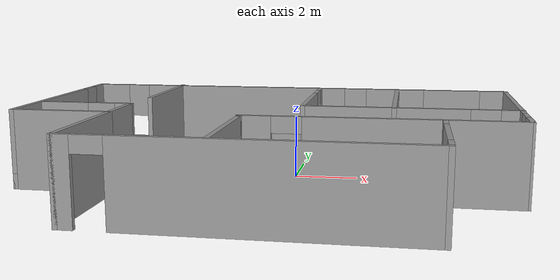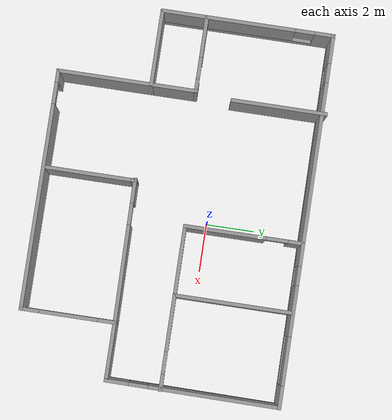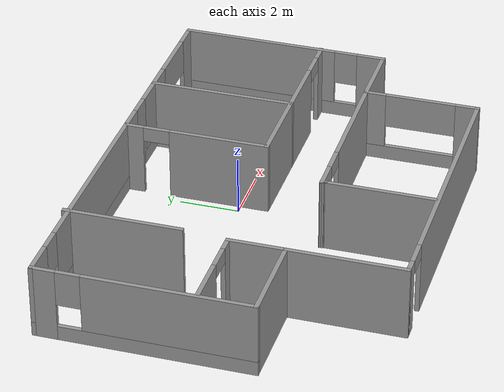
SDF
<?xml version='1.0'?>
<sdf version='1.7'>
  <model name='model'>
    <pose>-0.629865 -1.42333 0 0 -0 0</pose>
    <link name='Wall_0'>
      <pose>-0.000263 5.40063 0 0 -0 3.14159</pose>
      <visual name='Wall_0_Visual_0'>
        <pose>-7.26449 0 1.25 0 -0 0</pose>
        <geometry>
          <box>
            <size>0.971021 0.15 2.5</size>
          </box>
        </geometry>
        <material>
          <script>
            <uri>file://media/materials/scripts/gazebo.material</uri>
            <name>Gazebo/Grey</name>
          </script>
          <ambient>1 1 1 1</ambient>
        </material>
        <meta>
          <layer>0</layer>
        </meta>
      </visual>
      <collision name='Wall_0_Collision_0'>
        <geometry>
          <box>
            <size>0.971021 0.15 2.5</size>
          </box>
        </geometry>
        <pose>-7.26449 0 1.25 0 -0 0</pose>
      </collision>
      <visual name='Wall_0_Visual_1'>
        <pose>0.485511 0 0.25 0 -0 0</pose>
        <geometry>
          <box>
            <size>14.529 0.15 0.5</size>
          </box>
        </geometry>
        <material>
          <script>
            <uri>file://media/materials/scripts/gazebo.material</uri>
            <name>Gazebo/Grey</name>
          </script>
          <ambient>1 1 1 1</ambient>
        </material>
        <meta>
          <layer>0</layer>
        </meta>
      </visual>
      <collision name='Wall_0_Collision_1'>
        <geometry>
          <box>
            <size>14.529 0.15 0.5</size>
          </box>
        </geometry>
        <pose>0.485511 0 0.25 0 -0 0</pose>
      </collision>
      <visual name='Wall_0_Visual_2'>
        <pose>-3.73328 0 1.5 0 -0 0</pose>
        <geometry>
          <box>
            <size>2.0914 0.15 2</size>
          </box>
        </geometry>
        <material>
          <script>
            <uri>file://media/materials/scripts/gazebo.material</uri>
            <name>Gazebo/Grey</name>
          </script>
          <ambient>1 1 1 1</ambient>
        </material>
        <meta>
          <layer>0</layer>
        </meta>
      </visual>
      <collision name='Wall_0_Collision_2'>
        <geometry>
          <box>
            <size>2.0914 0.15 2</size>
          </box>
        </geometry>
        <pose>-3.73328 0 1.5 0 -0 0</pose>
      </collision>
      <visual name='Wall_0_Visual_3'>
        <pose>1.91797 0 1.5 0 -0 0</pose>
        <geometry>
          <box>
            <size>7.6111 0.15 2</size>
          </box>
        </geometry>
        <material>
          <script>
            <uri>file://media/materials/scripts/gazebo.material</uri>
            <name>Gazebo/Grey</name>
          </script>
          <ambient>1 1 1 1</ambient>
        </material>
        <meta>
          <layer>0</layer>
        </meta>
      </visual>
      <collision name='Wall_0_Collision_3'>
        <geometry>
          <box>
            <size>7.6111 0.15 2</size>
          </box>
        </geometry>
        <pose>1.91797 0 1.5 0 -0 0</pose>
      </collision>
      <visual name='Wall_0_Visual_4'>
        <pose>7.13676 0 1.5 0 -0 0</pose>
        <geometry>
          <box>
            <size>1.22648 0.15 2</size>
          </box>
        </geometry>
        <material>
          <script>
            <uri>file://media/materials/scripts/gazebo.material</uri>
            <name>Gazebo/Grey</name>
          </script>
          <ambient>1 1 1 1</ambient>
        </material>
        <meta>
          <layer>0</layer>
        </meta>
      </visual>
      <collision name='Wall_0_Collision_4'>
        <geometry>
          <box>
            <size>1.22648 0.15 2</size>
          </box>
        </geometry>
        <pose>7.13676 0 1.5 0 -0 0</pose>
      </collision>
      <visual name='Wall_0_Visual_5'>
        <pose>-5.77898 0 1.9 0 -0 0</pose>
        <geometry>
          <box>
            <size>2 0.15 1.2</size>
          </box>
        </geometry>
        <material>
          <script>
            <uri>file://media/materials/scripts/gazebo.material</uri>
            <name>Gazebo/Grey</name>
          </script>
          <ambient>1 1 1 1</ambient>
        </material>
        <meta>
          <layer>0</layer>
        </meta>
      </visual>
      <collision name='Wall_0_Collision_5'>
        <geometry>
          <box>
            <size>2 0.15 1.2</size>
          </box>
        </geometry>
        <pose>-5.77898 0 1.9 0 -0 0</pose>
      </collision>
      <visual name='Wall_0_Visual_6'>
        <pose>-2.28758 0 1.9 0 -0 0</pose>
        <geometry>
          <box>
            <size>0.8 0.15 1.2</size>
          </box>
        </geometry>
        <material>
          <script>
            <uri>file://media/materials/scripts/gazebo.material</uri>
            <name>Gazebo/Grey</name>
          </script>
          <ambient>1 1 1 1</ambient>
        </material>
        <meta>
          <layer>0</layer>
        </meta>
      </visual>
      <collision name='Wall_0_Collision_6'>
        <geometry>
          <box>
            <size>0.8 0.15 1.2</size>
          </box>
        </geometry>
        <pose>-2.28758 0 1.9 0 -0 0</pose>
      </collision>
      <visual name='Wall_0_Visual_7'>
        <pose>6.12352 0 1.9 0 -0 0</pose>
        <geometry>
          <box>
            <size>0.8 0.15 1.2</size>
          </box>
        </geometry>
        <material>
          <script>
            <uri>file://media/materials/scripts/gazebo.material</uri>
            <name>Gazebo/Grey</name>
          </script>
          <ambient>1 1 1 1</ambient>
        </material>
        <meta>
          <layer>0</layer>
        </meta>
      </visual>
      <collision name='Wall_0_Collision_7'>
        <geometry>
          <box>
            <size>0.8 0.15 1.2</size>
          </box>
        </geometry>
        <pose>6.12352 0 1.9 0 -0 0</pose>
      </collision>
    </link>
    <link name='Wall_12'>
      <pose>5.27474 -3.62437 0 0 -0 1.5708</pose>
      <visual name='Wall_12_Visual_0'>
        <pose>-1.58898 0 1.25 0 -0 0</pose>
        <geometry>
          <box>
            <size>0.822046 0.15 2.5</size>
          </box>
        </geometry>
        <material>
          <script>
            <uri>file://media/materials/scripts/gazebo.material</uri>
            <name>Gazebo/Grey</name>
          </script>
          <ambient>1 1 1 1</ambient>
        </material>
        <meta>
          <layer>0</layer>
        </meta>
      </visual>
      <collision name='Wall_12_Collision_0'>
        <geometry>
          <box>
            <size>0.822046 0.15 2.5</size>
          </box>
        </geometry>
        <pose>-1.58898 0 1.25 0 -0 0</pose>
      </collision>
      <visual name='Wall_12_Visual_1'>
        <pose>0.411023 0 0.25 0 -0 0</pose>
        <geometry>
          <box>
            <size>3.17795 0.15 0.5</size>
          </box>
        </geometry>
        <material>
          <script>
            <uri>file://media/materials/scripts/gazebo.material</uri>
            <name>Gazebo/Grey</name>
          </script>
          <ambient>1 1 1 1</ambient>
        </material>
        <meta>
          <layer>0</layer>
        </meta>
      </visual>
      <collision name='Wall_12_Collision_1'>
        <geometry>
          <box>
            <size>3.17795 0.15 0.5</size>
          </box>
        </geometry>
        <pose>0.411023 0 0.25 0 -0 0</pose>
      </collision>
      <visual name='Wall_12_Visual_2'>
        <pose>1.61102 0 1.5 0 -0 0</pose>
        <geometry>
          <box>
            <size>0.777954 0.15 2</size>
          </box>
        </geometry>
        <material>
          <script>
            <uri>file://media/materials/scripts/gazebo.material</uri>
            <name>Gazebo/Grey</name>
          </script>
          <ambient>1 1 1 1</ambient>
        </material>
        <meta>
          <layer>0</layer>
        </meta>
      </visual>
      <collision name='Wall_12_Collision_2'>
        <geometry>
          <box>
            <size>0.777954 0.15 2</size>
          </box>
        </geometry>
        <pose>1.61102 0 1.5 0 -0 0</pose>
      </collision>
      <visual name='Wall_12_Visual_3'>
        <pose>0.022046 0 1.9 0 -0 0</pose>
        <geometry>
          <box>
            <size>2.4 0.15 1.2</size>
          </box>
        </geometry>
        <material>
          <script>
            <uri>file://media/materials/scripts/gazebo.material</uri>
            <name>Gazebo/Grey</name>
          </script>
          <ambient>1 1 1 1</ambient>
        </material>
        <meta>
          <layer>0</layer>
        </meta>
      </visual>
      <collision name='Wall_12_Collision_3'>
        <geometry>
          <box>
            <size>2.4 0.15 1.2</size>
          </box>
        </geometry>
        <pose>0.022046 0 1.9 0 -0 0</pose>
      </collision>
    </link>
    <link name='Wall_13'>
      <collision name='Wall_13_Collision'>
        <geometry>
          <box>
            <size>2.5 0.15 2.5</size>
          </box>
        </geometry>
        <pose>0 0 1.25 0 -0 0</pose>
      </collision>
      <visual name='Wall_13_Visual'>
        <pose>0 0 1.25 0 -0 0</pose>
        <geometry>
          <box>
            <size>2.5 0.15 2.5</size>
          </box>
        </geometry>
        <material>
          <script>
            <uri>file://media/materials/scripts/gazebo.material</uri>
            <name>Gazebo/Grey</name>
          </script>
          <ambient>1 1 1 1</ambient>
        </material>
        <meta>
          <layer>0</layer>
        </meta>
      </visual>
      <pose>6.44974 -1.69937 0 0 -0 0</pose>
    </link>
    <link name='Wall_14'>
      <pose>7.64974 1.85063 0 0 -0 1.56375</pose>
      <visual name='Wall_14_Visual_0'>
        <pose>-3.12543 0 1.25 0 -0 0</pose>
        <geometry>
          <box>
            <size>0.999325 0.15 2.5</size>
          </box>
        </geometry>
        <material>
          <script>
            <uri>file://media/materials/scripts/gazebo.material</uri>
            <name>Gazebo/Grey</name>
          </script>
          <ambient>1 1 1 1</ambient>
        </material>
        <meta>
          <layer>0</layer>
        </meta>
      </visual>
      <collision name='Wall_14_Collision_0'>
        <geometry>
          <box>
            <size>0.999325 0.15 2.5</size>
          </box>
        </geometry>
        <pose>-3.12543 0 1.25 0 -0 0</pose>
      </collision>
      <visual name='Wall_14_Visual_1'>
        <pose>0.499662 0 0.25 0 -0 0</pose>
        <geometry>
          <box>
            <size>6.25085 0.15 0.5</size>
          </box>
        </geometry>
        <material>
          <script>
            <uri>file://media/materials/scripts/gazebo.material</uri>
            <name>Gazebo/Grey</name>
          </script>
          <ambient>1 1 1 1</ambient>
        </material>
        <meta>
          <layer>0</layer>
        </meta>
      </visual>
      <collision name='Wall_14_Collision_1'>
        <geometry>
          <box>
            <size>6.25085 0.15 0.5</size>
          </box>
        </geometry>
        <pose>0.499662 0 0.25 0 -0 0</pose>
      </collision>
      <visual name='Wall_14_Visual_2'>
        <pose>0.899662 0 1.5 0 -0 0</pose>
        <geometry>
          <box>
            <size>5.45085 0.15 2</size>
          </box>
        </geometry>
        <material>
          <script>
            <uri>file://media/materials/scripts/gazebo.material</uri>
            <name>Gazebo/Grey</name>
          </script>
          <ambient>1 1 1 1</ambient>
        </material>
        <meta>
          <layer>0</layer>
        </meta>
      </visual>
      <collision name='Wall_14_Collision_2'>
        <geometry>
          <box>
            <size>5.45085 0.15 2</size>
          </box>
        </geometry>
        <pose>0.899662 0 1.5 0 -0 0</pose>
      </collision>
      <visual name='Wall_14_Visual_3'>
        <pose>-2.22576 0 1.9 0 -0 0</pose>
        <geometry>
          <box>
            <size>0.8 0.15 1.2</size>
          </box>
        </geometry>
        <material>
          <script>
            <uri>file://media/materials/scripts/gazebo.material</uri>
            <name>Gazebo/Grey</name>
          </script>
          <ambient>1 1 1 1</ambient>
        </material>
        <meta>
          <layer>0</layer>
        </meta>
      </visual>
      <collision name='Wall_14_Collision_3'>
        <geometry>
          <box>
            <size>0.8 0.15 1.2</size>
          </box>
        </geometry>
        <pose>-2.22576 0 1.9 0 -0 0</pose>
      </collision>
    </link>
    <link name='Wall_16'>
      <pose>0.964816 2.96567 0 0 -0 -1.5708</pose>
      <visual name='Wall_16_Visual_0'>
        <pose>-2.1585 0 1.25 0 -0 0</pose>
        <geometry>
          <box>
            <size>0.683 0.15 2.5</size>
          </box>
        </geometry>
        <material>
          <script>
            <uri>file://media/materials/scripts/gazebo.material</uri>
            <name>Gazebo/Grey</name>
          </script>
          <ambient>1 1 1 1</ambient>
        </material>
        <meta>
          <layer>0</layer>
        </meta>
      </visual>
      <collision name='Wall_16_Collision_0'>
        <geometry>
          <box>
            <size>0.683 0.15 2.5</size>
          </box>
        </geometry>
        <pose>-2.1585 0 1.25 0 -0 0</pose>
      </collision>
      <visual name='Wall_16_Visual_1'>
        <pose>0.7915 0 1.25 0 -0 0</pose>
        <geometry>
          <box>
            <size>3.417 0.15 2.5</size>
          </box>
        </geometry>
        <material>
          <script>
            <uri>file://media/materials/scripts/gazebo.material</uri>
            <name>Gazebo/Grey</name>
          </script>
          <ambient>1 1 1 1</ambient>
        </material>
        <meta>
          <layer>0</layer>
        </meta>
      </visual>
      <collision name='Wall_16_Collision_1'>
        <geometry>
          <box>
            <size>3.417 0.15 2.5</size>
          </box>
        </geometry>
        <pose>0.7915 0 1.25 0 -0 0</pose>
      </collision>
      <visual name='Wall_16_Visual_2'>
        <pose>-1.367 0 2.25 0 -0 0</pose>
        <geometry>
          <box>
            <size>0.9 0.15 0.5</size>
          </box>
        </geometry>
        <material>
          <script>
            <uri>file://media/materials/scripts/gazebo.material</uri>
            <name>Gazebo/Grey</name>
          </script>
          <ambient>1 1 1 1</ambient>
        </material>
        <meta>
          <layer>0</layer>
        </meta>
      </visual>
      <collision name='Wall_16_Collision_2'>
        <geometry>
          <box>
            <size>0.9 0.15 0.5</size>
          </box>
        </geometry>
        <pose>-1.367 0 2.25 0 -0 0</pose>
      </collision>
    </link>
    <link name='Wall_18'>
      <collision name='Wall_18_Collision'>
        <geometry>
          <box>
            <size>3 0.15 2.5</size>
          </box>
        </geometry>
        <pose>0 0 1.25 0 -0 0</pose>
      </collision>
      <visual name='Wall_18_Visual'>
        <pose>0 0 1.25 0 -0 0</pose>
        <geometry>
          <box>
            <size>3 0.15 2.5</size>
          </box>
        </geometry>
        <material>
          <script>
            <uri>file://media/materials/scripts/gazebo.material</uri>
            <name>Gazebo/Grey</name>
          </script>
          <ambient>1 1 1 1</ambient>
        </material>
        <meta>
          <layer>0</layer>
        </meta>
      </visual>
      <pose>2.38982 0.540673 0 0 -0 0</pose>
    </link>
    <link name='Wall_19'>
      <collision name='Wall_19_Collision'>
        <geometry>
          <box>
            <size>5 0.15 2.5</size>
          </box>
        </geometry>
        <pose>0 0 1.25 0 -0 0</pose>
      </collision>
      <visual name='Wall_19_Visual'>
        <pose>0 0 1.25 0 -0 0</pose>
        <geometry>
          <box>
            <size>5 0.15 2.5</size>
          </box>
        </geometry>
        <material>
          <script>
            <uri>file://media/materials/scripts/gazebo.material</uri>
            <name>Gazebo/Grey</name>
          </script>
          <ambient>1 1 1 1</ambient>
        </material>
        <meta>
          <layer>0</layer>
        </meta>
      </visual>
      <pose>3.81482 2.96567 0 0 -0 1.5708</pose>
    </link>
    <link name='Wall_2'>
      <pose>-7.67526 1.85063 0 0 -0 -1.5708</pose>
      <visual name='Wall_2_Visual_0'>
        <pose>-3.20062 0 1.25 0 -0 0</pose>
        <geometry>
          <box>
            <size>0.848754 0.15 2.5</size>
          </box>
        </geometry>
        <material>
          <script>
            <uri>file://media/materials/scripts/gazebo.material</uri>
            <name>Gazebo/Grey</name>
          </script>
          <ambient>1 1 1 1</ambient>
        </material>
        <meta>
          <layer>0</layer>
        </meta>
      </visual>
      <collision name='Wall_2_Collision_0'>
        <geometry>
          <box>
            <size>0.848754 0.15 2.5</size>
          </box>
        </geometry>
        <pose>-3.20062 0 1.25 0 -0 0</pose>
      </collision>
      <visual name='Wall_2_Visual_1'>
        <pose>0.424377 0 0.25 0 -0 0</pose>
        <geometry>
          <box>
            <size>6.40125 0.15 0.5</size>
          </box>
        </geometry>
        <material>
          <script>
            <uri>file://media/materials/scripts/gazebo.material</uri>
            <name>Gazebo/Grey</name>
          </script>
          <ambient>1 1 1 1</ambient>
        </material>
        <meta>
          <layer>0</layer>
        </meta>
      </visual>
      <collision name='Wall_2_Collision_1'>
        <geometry>
          <box>
            <size>6.40125 0.15 0.5</size>
          </box>
        </geometry>
        <pose>0.424377 0 0.25 0 -0 0</pose>
      </collision>
      <visual name='Wall_2_Visual_2'>
        <pose>0.824377 0 1.5 0 -0 0</pose>
        <geometry>
          <box>
            <size>5.60125 0.15 2</size>
          </box>
        </geometry>
        <material>
          <script>
            <uri>file://media/materials/scripts/gazebo.material</uri>
            <name>Gazebo/Grey</name>
          </script>
          <ambient>1 1 1 1</ambient>
        </material>
        <meta>
          <layer>0</layer>
        </meta>
      </visual>
      <collision name='Wall_2_Collision_2'>
        <geometry>
          <box>
            <size>5.60125 0.15 2</size>
          </box>
        </geometry>
        <pose>0.824377 0 1.5 0 -0 0</pose>
      </collision>
      <visual name='Wall_2_Visual_3'>
        <pose>-2.37625 0 1.9 0 -0 0</pose>
        <geometry>
          <box>
            <size>0.8 0.15 1.2</size>
          </box>
        </geometry>
        <material>
          <script>
            <uri>file://media/materials/scripts/gazebo.material</uri>
            <name>Gazebo/Grey</name>
          </script>
          <ambient>1 1 1 1</ambient>
        </material>
        <meta>
          <layer>0</layer>
        </meta>
      </visual>
      <collision name='Wall_2_Collision_3'>
        <geometry>
          <box>
            <size>0.8 0.15 1.2</size>
          </box>
        </geometry>
        <pose>-2.37625 0 1.9 0 -0 0</pose>
      </collision>
    </link>
    <link name='Wall_24'>
      <pose>5.73982 0.540673 0 0 -0 0</pose>
      <visual name='Wall_24_Visual_0'>
        <pose>-0.8088 0 1.25 0 -0 0</pose>
        <geometry>
          <box>
            <size>2.3824 0.15 2.5</size>
          </box>
        </geometry>
        <material>
          <script>
            <uri>file://media/materials/scripts/gazebo.material</uri>
            <name>Gazebo/Grey</name>
          </script>
          <ambient>1 1 1 1</ambient>
        </material>
        <meta>
          <layer>0</layer>
        </meta>
      </visual>
      <collision name='Wall_24_Collision_0'>
        <geometry>
          <box>
            <size>2.3824 0.15 2.5</size>
          </box>
        </geometry>
        <pose>-0.8088 0 1.25 0 -0 0</pose>
      </collision>
      <visual name='Wall_24_Visual_1'>
        <pose>1.6412 0 1.25 0 -0 0</pose>
        <geometry>
          <box>
            <size>0.7176 0.15 2.5</size>
          </box>
        </geometry>
        <material>
          <script>
            <uri>file://media/materials/scripts/gazebo.material</uri>
            <name>Gazebo/Grey</name>
          </script>
          <ambient>1 1 1 1</ambient>
        </material>
        <meta>
          <layer>0</layer>
        </meta>
      </visual>
      <collision name='Wall_24_Collision_1'>
        <geometry>
          <box>
            <size>0.7176 0.15 2.5</size>
          </box>
        </geometry>
        <pose>1.6412 0 1.25 0 -0 0</pose>
      </collision>
      <visual name='Wall_24_Visual_2'>
        <pose>0.8324 0 2.25 0 -0 0</pose>
        <geometry>
          <box>
            <size>0.9 0.15 0.5</size>
          </box>
        </geometry>
        <material>
          <script>
            <uri>file://media/materials/scripts/gazebo.material</uri>
            <name>Gazebo/Grey</name>
          </script>
          <ambient>1 1 1 1</ambient>
        </material>
        <meta>
          <layer>0</layer>
        </meta>
      </visual>
      <collision name='Wall_24_Collision_2'>
        <geometry>
          <box>
            <size>0.9 0.15 0.5</size>
          </box>
        </geometry>
        <pose>0.8324 0 2.25 0 -0 0</pose>
      </collision>
    </link>
    <link name='Wall_3'>
      <collision name='Wall_3_Collision'>
        <geometry>
          <box>
            <size>3.25 0.15 2.5</size>
          </box>
        </geometry>
        <pose>0 0 1.25 0 -0 0</pose>
      </collision>
      <visual name='Wall_3_Visual'>
        <pose>0 0 1.25 0 -0 0</pose>
        <geometry>
          <box>
            <size>3.25 0.15 2.5</size>
          </box>
        </geometry>
        <material>
          <script>
            <uri>file://media/materials/scripts/gazebo.material</uri>
            <name>Gazebo/Grey</name>
          </script>
          <ambient>1 1 1 1</ambient>
        </material>
        <meta>
          <layer>0</layer>
        </meta>
      </visual>
      <pose>-6.12526 -1.69937 0 0 -0 0</pose>
    </link>
    <link name='Wall_33'>
      <collision name='Wall_33_Collision'>
        <geometry>
          <box>
            <size>2 0.15 2.5</size>
          </box>
        </geometry>
        <pose>0 0 1.25 0 -0 0</pose>
      </collision>
      <visual name='Wall_33_Visual'>
        <pose>0 0 1.25 0 -0 0</pose>
        <geometry>
          <box>
            <size>2 0.15 2.5</size>
          </box>
        </geometry>
        <material>
          <script>
            <uri>file://media/materials/scripts/gazebo.material</uri>
            <name>Gazebo/Grey</name>
          </script>
          <ambient>1 1 1 1</ambient>
        </material>
        <meta>
          <layer>0</layer>
        </meta>
      </visual>
      <pose>-4.57526 -0.774373 0 0 -0 1.5708</pose>
    </link>
    <link name='Wall_34'>
      <pose>-6.12526 0.150627 0 0 -0 3.14159</pose>
      <visual name='Wall_34_Visual_0'>
        <pose>-1.32919 0 1.25 0 -0 0</pose>
        <geometry>
          <box>
            <size>0.591621 0.15 2.5</size>
          </box>
        </geometry>
        <material>
          <script>
            <uri>file://media/materials/scripts/gazebo.material</uri>
            <name>Gazebo/Grey</name>
          </script>
          <ambient>1 1 1 1</ambient>
        </material>
        <meta>
          <layer>0</layer>
        </meta>
      </visual>
      <collision name='Wall_34_Collision_0'>
        <geometry>
          <box>
            <size>0.591621 0.15 2.5</size>
          </box>
        </geometry>
        <pose>-1.32919 0 1.25 0 -0 0</pose>
      </collision>
      <visual name='Wall_34_Visual_1'>
        <pose>0.745811 0 1.25 0 -0 0</pose>
        <geometry>
          <box>
            <size>1.75838 0.15 2.5</size>
          </box>
        </geometry>
        <material>
          <script>
            <uri>file://media/materials/scripts/gazebo.material</uri>
            <name>Gazebo/Grey</name>
          </script>
          <ambient>1 1 1 1</ambient>
        </material>
        <meta>
          <layer>0</layer>
        </meta>
      </visual>
      <collision name='Wall_34_Collision_1'>
        <geometry>
          <box>
            <size>1.75838 0.15 2.5</size>
          </box>
        </geometry>
        <pose>0.745811 0 1.25 0 -0 0</pose>
      </collision>
      <visual name='Wall_34_Visual_2'>
        <pose>-0.583379 0 2.25 0 -0 0</pose>
        <geometry>
          <box>
            <size>0.9 0.15 0.5</size>
          </box>
        </geometry>
        <material>
          <script>
            <uri>file://media/materials/scripts/gazebo.material</uri>
            <name>Gazebo/Grey</name>
          </script>
          <ambient>1 1 1 1</ambient>
        </material>
        <meta>
          <layer>0</layer>
        </meta>
      </visual>
      <collision name='Wall_34_Collision_2'>
        <geometry>
          <box>
            <size>0.9 0.15 0.5</size>
          </box>
        </geometry>
        <pose>-0.583379 0 2.25 0 -0 0</pose>
      </collision>
    </link>
    <link name='Wall_36'>
      <collision name='Wall_36_Collision'>
        <geometry>
          <box>
            <size>3.75 0.15 2.5</size>
          </box>
        </geometry>
        <pose>0 0 1.25 0 -0 0</pose>
      </collision>
      <visual name='Wall_36_Visual'>
        <pose>0 0 1.25 0 -0 0</pose>
        <geometry>
          <box>
            <size>3.75 0.15 2.5</size>
          </box>
        </geometry>
        <material>
          <script>
            <uri>file://media/materials/scripts/gazebo.material</uri>
            <name>Gazebo/Grey</name>
          </script>
          <ambient>1 1 1 1</ambient>
        </material>
        <meta>
          <layer>0</layer>
        </meta>
      </visual>
      <pose>-0.569284 -3.65383 0 0 -0 1.5708</pose>
    </link>
    <link name='Wall_37'>
      <collision name='Wall_37_Collision'>
        <geometry>
          <box>
            <size>0.15 0.15 2.5</size>
          </box>
        </geometry>
        <pose>0 0 1.25 0 -0 0</pose>
      </collision>
      <visual name='Wall_37_Visual'>
        <pose>0 0 1.25 0 -0 0</pose>
        <geometry>
          <box>
            <size>0.15 0.15 2.5</size>
          </box>
        </geometry>
        <material>
          <script>
            <uri>file://media/materials/scripts/gazebo.material</uri>
            <name>Gazebo/Grey</name>
          </script>
          <ambient>1 1 1 1</ambient>
        </material>
        <meta>
          <layer>0</layer>
        </meta>
      </visual>
      <pose>-0.569284 -1.85383 0 0 -0 0</pose>
    </link>
    <link name='Wall_39'>
      <collision name='Wall_39_Collision'>
        <geometry>
          <box>
            <size>0.25 0.15 2.5</size>
          </box>
        </geometry>
        <pose>0 0 1.25 0 -0 0</pose>
      </collision>
      <visual name='Wall_39_Visual'>
        <pose>0 0 1.25 0 -0 0</pose>
        <geometry>
          <box>
            <size>0.25 0.15 2.5</size>
          </box>
        </geometry>
        <material>
          <script>
            <uri>file://media/materials/scripts/gazebo.material</uri>
            <name>Gazebo/Grey</name>
          </script>
          <ambient>1 1 1 1</ambient>
        </material>
        <meta>
          <layer>0</layer>
        </meta>
      </visual>
      <pose>-0.582225 -1.80553 0 0 -0 1.8326</pose>
    </link>
    <link name='Wall_4'>
      <collision name='Wall_4_Collision'>
        <geometry>
          <box>
            <size>4 0.15 2.5</size>
          </box>
        </geometry>
        <pose>0 0 1.25 0 -0 0</pose>
      </collision>
      <visual name='Wall_4_Visual'>
        <pose>0 0 1.25 0 -0 0</pose>
        <geometry>
          <box>
            <size>4 0.15 2.5</size>
          </box>
        </geometry>
        <material>
          <script>
            <uri>file://media/materials/scripts/gazebo.material</uri>
            <name>Gazebo/Grey</name>
          </script>
          <ambient>1 1 1 1</ambient>
        </material>
        <meta>
          <layer>0</layer>
        </meta>
      </visual>
      <pose>-4.57526 -3.62437 0 0 -0 -1.5708</pose>
    </link>
    <link name='Wall_40'>
      <pose>2.33979 -1.7283 0 0 -0 0.009857</pose>
      <visual name='Wall_40_Visual_0'>
        <pose>-2.49722 0 1.25 0 -0 0</pose>
        <geometry>
          <box>
            <size>1.02576 0.15 2.5</size>
          </box>
        </geometry>
        <material>
          <script>
            <uri>file://media/materials/scripts/gazebo.material</uri>
            <name>Gazebo/Grey</name>
          </script>
          <ambient>1 1 1 1</ambient>
        </material>
        <meta>
          <layer>0</layer>
        </meta>
      </visual>
      <collision name='Wall_40_Collision_0'>
        <geometry>
          <box>
            <size>1.02576 0.15 2.5</size>
          </box>
        </geometry>
        <pose>-2.49722 0 1.25 0 -0 0</pose>
      </collision>
      <visual name='Wall_40_Visual_1'>
        <pose>0.962878 0 1.25 0 -0 0</pose>
        <geometry>
          <box>
            <size>4.09443 0.15 2.5</size>
          </box>
        </geometry>
        <material>
          <script>
            <uri>file://media/materials/scripts/gazebo.material</uri>
            <name>Gazebo/Grey</name>
          </script>
          <ambient>1 1 1 1</ambient>
        </material>
        <meta>
          <layer>0</layer>
        </meta>
      </visual>
      <collision name='Wall_40_Collision_1'>
        <geometry>
          <box>
            <size>4.09443 0.15 2.5</size>
          </box>
        </geometry>
        <pose>0.962878 0 1.25 0 -0 0</pose>
      </collision>
      <visual name='Wall_40_Visual_2'>
        <pose>-1.53434 0 2.25 0 -0 0</pose>
        <geometry>
          <box>
            <size>0.9 0.15 0.5</size>
          </box>
        </geometry>
        <material>
          <script>
            <uri>file://media/materials/scripts/gazebo.material</uri>
            <name>Gazebo/Grey</name>
          </script>
          <ambient>1 1 1 1</ambient>
        </material>
        <meta>
          <layer>0</layer>
        </meta>
      </visual>
      <collision name='Wall_40_Collision_2'>
        <geometry>
          <box>
            <size>0.9 0.15 0.5</size>
          </box>
        </geometry>
        <pose>-1.53434 0 2.25 0 -0 0</pose>
      </collision>
    </link>
    <link name='Wall_42'>
      <collision name='Wall_42_Collision'>
        <geometry>
          <box>
            <size>4 0.15 2.5</size>
          </box>
        </geometry>
        <pose>0 0 1.25 0 -0 0</pose>
      </collision>
      <visual name='Wall_42_Visual'>
        <pose>0 0 1.25 0 -0 0</pose>
        <geometry>
          <box>
            <size>4 0.15 2.5</size>
          </box>
        </geometry>
        <material>
          <script>
            <uri>file://media/materials/scripts/gazebo.material</uri>
            <name>Gazebo/Grey</name>
          </script>
          <ambient>1 1 1 1</ambient>
        </material>
        <meta>
          <layer>0</layer>
        </meta>
      </visual>
      <pose>-4.43098 3.62437 0 0 -0 -1.5708</pose>
    </link>
    <link name='Wall_5'>
      <pose>0.349737 -5.54937 0 0 -0 0</pose>
      <visual name='Wall_5_Visual_0'>
        <pose>-4.71861 0 1.25 0 -0 0</pose>
        <geometry>
          <box>
            <size>0.562779 0.15 2.5</size>
          </box>
        </geometry>
        <material>
          <script>
            <uri>file://media/materials/scripts/gazebo.material</uri>
            <name>Gazebo/Grey</name>
          </script>
          <ambient>1 1 1 1</ambient>
        </material>
        <meta>
          <layer>0</layer>
        </meta>
      </visual>
      <collision name='Wall_5_Collision_0'>
        <geometry>
          <box>
            <size>0.562779 0.15 2.5</size>
          </box>
        </geometry>
        <pose>-4.71861 0 1.25 0 -0 0</pose>
      </collision>
      <visual name='Wall_5_Visual_1'>
        <pose>0.731389 0 1.25 0 -0 0</pose>
        <geometry>
          <box>
            <size>8.53722 0.15 2.5</size>
          </box>
        </geometry>
        <material>
          <script>
            <uri>file://media/materials/scripts/gazebo.material</uri>
            <name>Gazebo/Grey</name>
          </script>
          <ambient>1 1 1 1</ambient>
        </material>
        <meta>
          <layer>0</layer>
        </meta>
      </visual>
      <collision name='Wall_5_Collision_1'>
        <geometry>
          <box>
            <size>8.53722 0.15 2.5</size>
          </box>
        </geometry>
        <pose>0.731389 0 1.25 0 -0 0</pose>
      </collision>
      <visual name='Wall_5_Visual_2'>
        <pose>-3.98722 0 2.25 0 -0 0</pose>
        <geometry>
          <box>
            <size>0.9 0.15 0.5</size>
          </box>
        </geometry>
        <material>
          <script>
            <uri>file://media/materials/scripts/gazebo.material</uri>
            <name>Gazebo/Grey</name>
          </script>
          <ambient>1 1 1 1</ambient>
        </material>
        <meta>
          <layer>0</layer>
        </meta>
      </visual>
      <collision name='Wall_5_Collision_2'>
        <geometry>
          <box>
            <size>0.9 0.15 0.5</size>
          </box>
        </geometry>
        <pose>-3.98722 0 2.25 0 -0 0</pose>
      </collision>
    </link>
    <static>1</static>
  </model>
</sdf>
